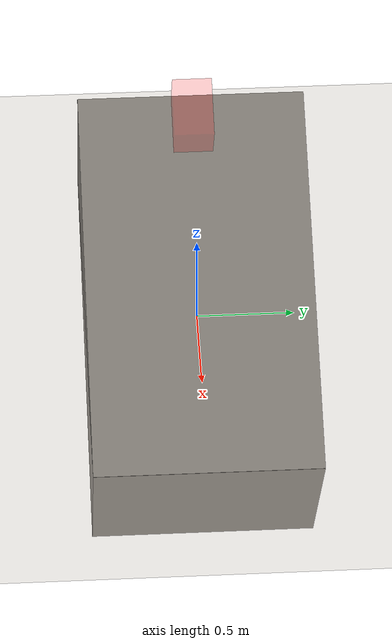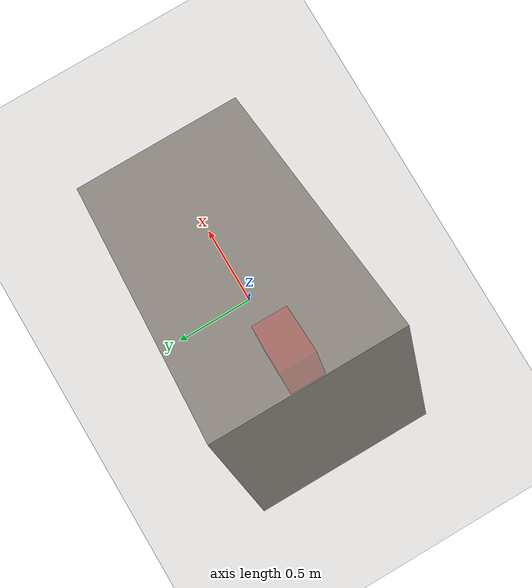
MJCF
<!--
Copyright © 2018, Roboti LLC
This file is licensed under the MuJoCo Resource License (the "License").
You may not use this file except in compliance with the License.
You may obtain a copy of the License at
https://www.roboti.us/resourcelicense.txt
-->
<mujoco model="Ramp">

    <include file="rampscene2.xml"/>

    <default>
      <geom friction="0.5 0.0005 0.00001" condim="4" solref="0.1 1"/>
  </default>

    <option solver="PGS" tolerance="1e-6"/>

    <size nconmax="500" njmax="5000" nstack="5000000"/>

    <worldbody>
        <!-- x = width_box * sqrt(2), z = height of ramp = 0.02*sqrt(2) -->
        <!-- quat = "cos(π/8) sin(π/8) 0 0". This corresponds to a 45 degree
            rotation about vecotor [1, 0, 0] (i.e. x-axis) to create a 45 degree ramp-->
        <body name="torso30" pos="-0.38 0 1.03"  quat="0.9659258262890683 0 0.25881904510252074 0">
            <freejoint/>
            <geom name="blockg" type="box" size="0.15 0.1 0.125" material="matobj" rgba="255 0 0 0.1"/>
            <site name="blocks" type="box" size="0.15 0.1 0.125" rgba="0 255 0 .2"/>
        </body>
    </worldbody>

    <sensor>
        <framelinvel name="gvel" objtype="geom" objname="blockg"/>
    </sensor>

</mujoco>

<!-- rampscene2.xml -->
<mujoco>
    <compiler meshdir="mesh/" texturedir="texture/"/>

    <statistic extent="2" meansize=".05"/>

    <option timestep="0.005" solver="Newton" iterations="30" tolerance="1e-10" cone="elliptic"/>

    <visual>
        <rgba haze="0.15 0.25 0.35 1"/>
        <quality shadowsize="2048"/>
        <map stiffness="700" shadowscale="0.5" fogstart="10" fogend="15" zfar="40" haze="0.3"/>
    </visual>

    <asset>
        <texture type="skybox" builtin="gradient" rgb1="0.3 0.5 0.7" rgb2="0 0 0" width="512" height="512"/>
        <texture name="texobj" type="cube" builtin="checker" rgb1=".2 .3 .4" rgb2=".1 0.15 0.2"
            width="512" height="512" mark="cross" markrgb=".8 .8 .8"/>
        <texture name="texplane" type="2d" file="Oak.png"/>
        <texture name="texmarble" type="cube" file="Marble.png"/>

        <material name="matplane" reflectance="0.3" texture="texplane" texrepeat="1 1" texuniform="true"/>
        <material name="matobj" reflectance="0.3" texture="texobj" texrepeat="1 1" texuniform="true"/>
        <material name="matmarble" texture="texmarble" rgba=".7 .7 .7 1"/>
    </asset>

    <worldbody>
        <light directional="true" diffuse=".4 .4 .4" specular="0.1 0.1 0.1" pos="0 0 5.0" dir="0 0 -1" castshadow="false"/>
        <light directional="true" diffuse=".6 .6 .6" specular="0.2 0.2 0.2" pos="0 0 4" dir="0 0 -1"/>
        <geom name="ground" type="plane" size="0 0 1" pos="0 0 0" material="matplane" condim="3"/>
        <!-- The ramp dimensions should be s.t. the plane of the floor bisects the rectangle -->
        <!-- z = 0.5*length of ramp. We want nice numbers so length = 1 -->
        <!-- x = 0.5*width_box = 0.5tan(\theta) = 0.5*tan(\pi/6) -->
        <!-- y = 0.5*depth_box = something reasonable. We set x = y here for some cute symmetry -->
        <geom type="box" size="1 0.5773502691896257 0.5773502691896257" material="matmarble" pos="0 0 0" quat="0.9659258262890683 0 0.25881904510252074 0" group="1" condim="3" name="ramp30"/>
        <!-- quat = "cos(π/8) sin(π/8) 0 0". This corresponds to a 45 degree

            rotation about vecotor [1, 0, 0] (i.e. x-axis) to create a 45 degree ramp-->
    </worldbody>

</mujoco>
